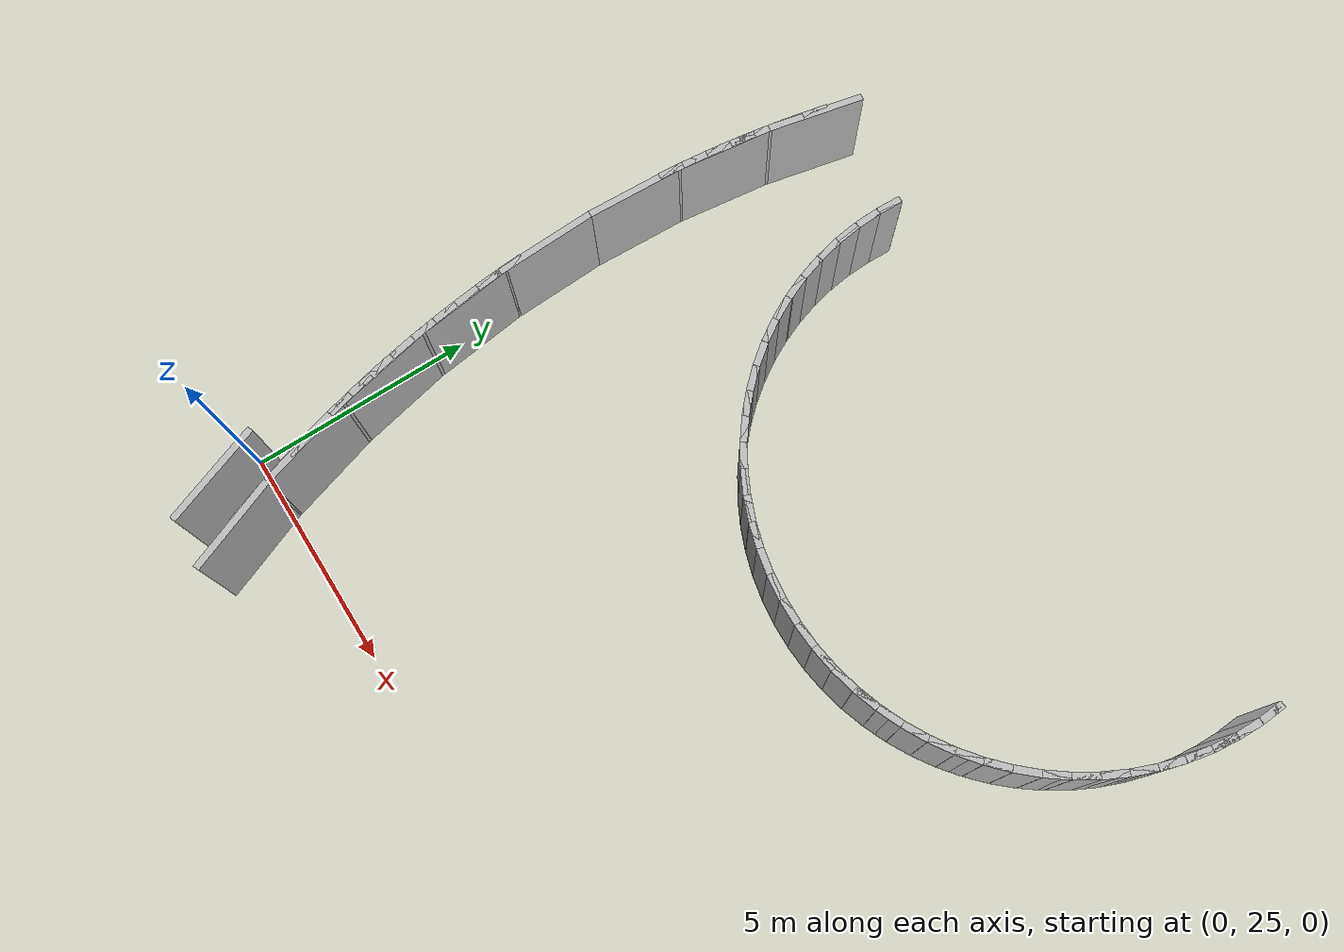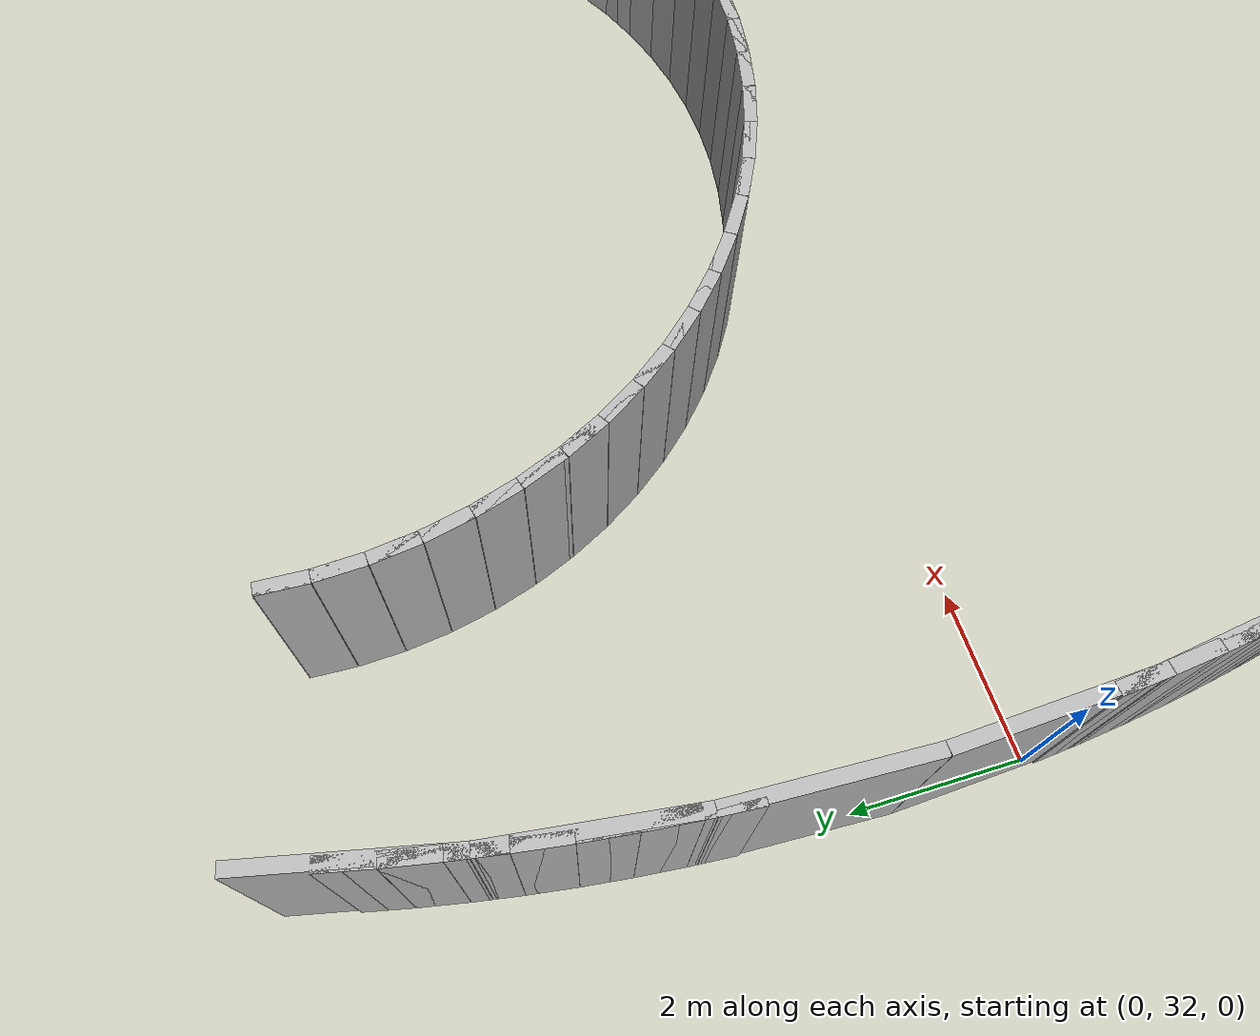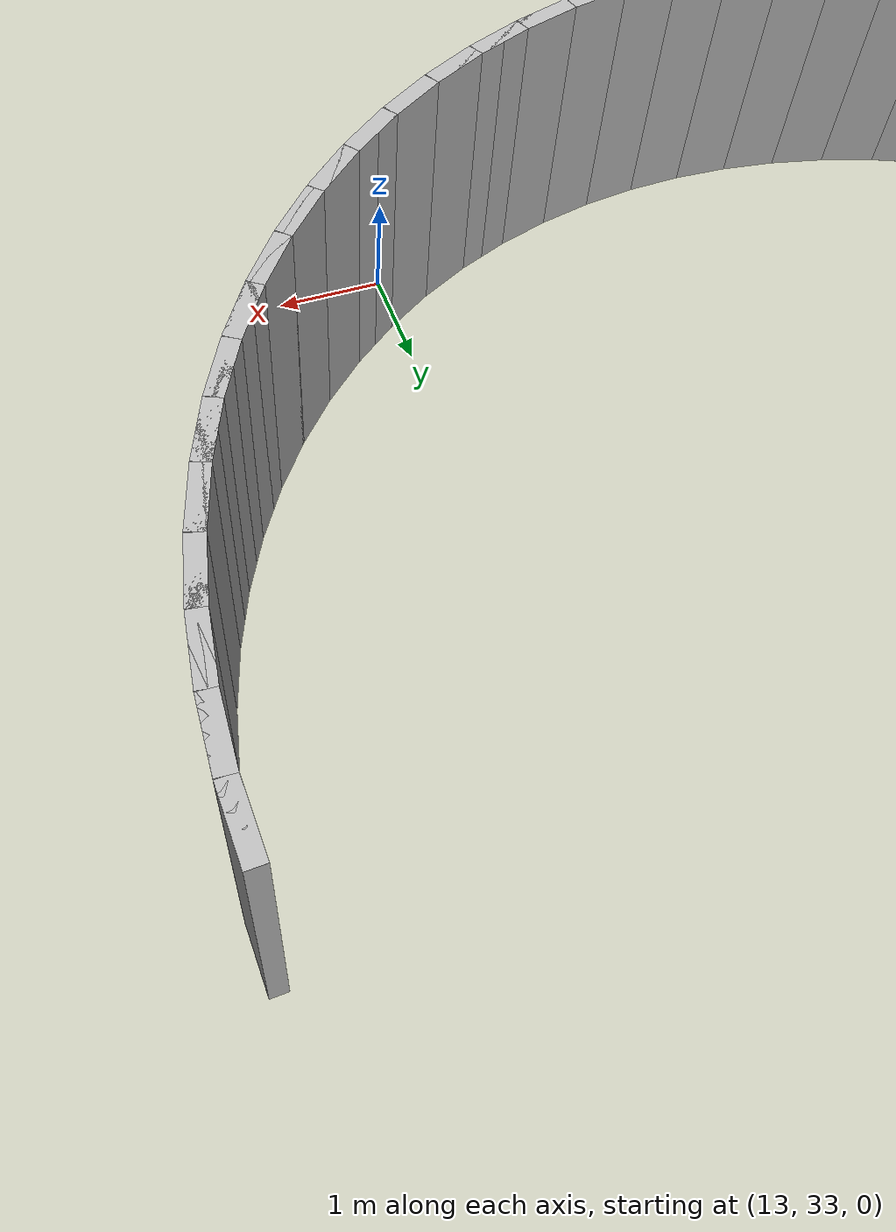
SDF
<sdf version="1.6">
 <model name="sps_2304">
  <static>1</static>
  <allow_auto_disable>0</allow_auto_disable>
  <link name="Wall5310">
   <collision name="collision"><geometry><box><size>0.549538 0.15 2.5</size></box></geometry></collision>
   <visual name="visual">
    <geometry><box><size>0.549538 0.15 2.5</size></box></geometry>
    <transparency>0.0</transparency>
   </visual>
   <pose>15.7837 38.9614 1.25 0 0 -1.52702</pose>
  </link>
  <link name="Wall5311">
   <collision name="collision"><geometry><box><size>0.549546 0.15 2.5</size></box></geometry></collision>
   <visual name="visual">
    <geometry><box><size>0.549546 0.15 2.5</size></box></geometry>
    <transparency>0.0</transparency>
   </visual>
   <pose>15.7836 38.4124 1.25 0 0 -1.6149</pose>
  </link>
  <link name="Wall5312">
   <collision name="collision"><geometry><box><size>0.549713 0.15 2.5</size></box></geometry></collision>
   <visual name="visual">
    <geometry><box><size>0.549713 0.15 2.5</size></box></geometry>
    <transparency>0.0</transparency>
   </visual>
   <pose>15.7355 37.8654 1.25 0 0 -1.70208</pose>
  </link>
  <link name="Wall5313">
   <collision name="collision"><geometry><box><size>0.549661 0.15 2.5</size></box></geometry></collision>
   <visual name="visual">
    <geometry><box><size>0.549661 0.15 2.5</size></box></geometry>
    <transparency>0.0</transparency>
   </visual>
   <pose>15.64 37.3246 1.25 0 0 -1.78906</pose>
  </link>
  <link name="Wall5314">
   <collision name="collision"><geometry><box><size>0.549473 0.15 2.5</size></box></geometry></collision>
   <visual name="visual">
    <geometry><box><size>0.549473 0.15 2.5</size></box></geometry>
    <transparency>0.0</transparency>
   </visual>
   <pose>15.4978 36.7943 1.25 0 0 -1.87656</pose>
  </link>
  <link name="Wall5315">
   <collision name="collision"><geometry><box><size>0.549763 0.15 2.5</size></box></geometry></collision>
   <visual name="visual">
    <geometry><box><size>0.549763 0.15 2.5</size></box></geometry>
    <transparency>0.0</transparency>
   </visual>
   <pose>15.3097 36.2784 1.25 0 0 -1.96398</pose>
  </link>
  <link name="Wall5316">
   <collision name="collision"><geometry><box><size>0.549537 0.15 2.5</size></box></geometry></collision>
   <visual name="visual">
    <geometry><box><size>0.549537 0.15 2.5</size></box></geometry>
    <transparency>0.0</transparency>
   </visual>
   <pose>15.0775 35.7808 1.25 0 0 -2.05084</pose>
  </link>
  <link name="Wall5317">
   <collision name="collision"><geometry><box><size>0.549534 0.15 2.5</size></box></geometry></collision>
   <visual name="visual">
    <geometry><box><size>0.549534 0.15 2.5</size></box></geometry>
    <transparency>0.0</transparency>
   </visual>
   <pose>14.8029 35.3054 1.25 0 0 -2.13834</pose>
  </link>
  <link name="Wall5318">
   <collision name="collision"><geometry><box><size>0.549681 0.15 2.5</size></box></geometry></collision>
   <visual name="visual">
    <geometry><box><size>0.549681 0.15 2.5</size></box></geometry>
    <transparency>0.0</transparency>
   </visual>
   <pose>14.4878 34.8557 1.25 0 0 -2.22565</pose>
  </link>
  <link name="Wall5319">
   <collision name="collision"><geometry><box><size>0.549667 0.15 2.5</size></box></geometry></collision>
   <visual name="visual">
    <geometry><box><size>0.549667 0.15 2.5</size></box></geometry>
    <transparency>0.0</transparency>
   </visual>
   <pose>14.1348 34.4351 1.25 0 0 -2.31268</pose>
  </link>
  <link name="Wall5320">
   <collision name="collision"><geometry><box><size>0.549679 0.15 2.5</size></box></geometry></collision>
   <visual name="visual">
    <geometry><box><size>0.549679 0.15 2.5</size></box></geometry>
    <transparency>0.0</transparency>
   </visual>
   <pose>13.7464 34.0469 1.25 0 0 -2.40018</pose>
  </link>
  <link name="Wall5321">
   <collision name="collision"><geometry><box><size>0.549507 0.15 2.5</size></box></geometry></collision>
   <visual name="visual">
    <geometry><box><size>0.549507 0.15 2.5</size></box></geometry>
    <transparency>0.0</transparency>
   </visual>
   <pose>13.3256 33.6941 1.25 0 0 -2.48734</pose>
  </link>
  <link name="Wall5322">
   <collision name="collision"><geometry><box><size>0.549557 0.15 2.5</size></box></geometry></collision>
   <visual name="visual">
    <geometry><box><size>0.549557 0.15 2.5</size></box></geometry>
    <transparency>0.0</transparency>
   </visual>
   <pose>12.8758 33.3793 1.25 0 0 -2.5746</pose>
  </link>
  <link name="Wall5323">
   <collision name="collision"><geometry><box><size>0.549615 0.15 2.5</size></box></geometry></collision>
   <visual name="visual">
    <geometry><box><size>0.549615 0.15 2.5</size></box></geometry>
    <transparency>0.0</transparency>
   </visual>
   <pose>12.4003 33.1049 1.25 0 0 -2.662</pose>
  </link>
  <link name="Wall5324">
   <collision name="collision"><geometry><box><size>0.5496 0.15 2.5</size></box></geometry></collision>
   <visual name="visual">
    <geometry><box><size>0.5496 0.15 2.5</size></box></geometry>
    <transparency>0.0</transparency>
   </visual>
   <pose>11.9025 32.873 1.25 0 0 -2.74913</pose>
  </link>
  <link name="Wall5325">
   <collision name="collision"><geometry><box><size>0.549826 0.15 2.5</size></box></geometry></collision>
   <visual name="visual">
    <geometry><box><size>0.549826 0.15 2.5</size></box></geometry>
    <transparency>0.0</transparency>
   </visual>
   <pose>11.3864 32.6853 1.25 0 0 -2.83638</pose>
  </link>
  <link name="Wall5326">
   <collision name="collision"><geometry><box><size>0.549509 0.15 2.5</size></box></geometry></collision>
   <visual name="visual">
    <geometry><box><size>0.549509 0.15 2.5</size></box></geometry>
    <transparency>0.0</transparency>
   </visual>
   <pose>10.8559 32.5434 1.25 0 0 -2.92407</pose>
  </link>
  <link name="Wall5327">
   <collision name="collision"><geometry><box><size>0.549484 0.15 2.5</size></box></geometry></collision>
   <visual name="visual">
    <geometry><box><size>0.549484 0.15 2.5</size></box></geometry>
    <transparency>0.0</transparency>
   </visual>
   <pose>10.3153 32.4483 1.25 0 0 -3.01093</pose>
  </link>
  <link name="Wall5328">
   <collision name="collision"><geometry><box><size>0.54971 0.15 2.5</size></box></geometry></collision>
   <visual name="visual">
    <geometry><box><size>0.54971 0.15 2.5</size></box></geometry>
    <transparency>0.0</transparency>
   </visual>
   <pose>9.76827 32.4006 1.25 0 0 -3.09828</pose>
  </link>
  <link name="Wall5329">
   <collision name="collision"><geometry><box><size>0.549535 0.15 2.5</size></box></geometry></collision>
   <visual name="visual">
    <geometry><box><size>0.549535 0.15 2.5</size></box></geometry>
    <transparency>0.0</transparency>
   </visual>
   <pose>9.21917 32.4007 1.25 0 -0 3.09793</pose>
  </link>
  <link name="Wall5330">
   <collision name="collision"><geometry><box><size>0.549721 0.15 2.5</size></box></geometry></collision>
   <visual name="visual">
    <geometry><box><size>0.549721 0.15 2.5</size></box></geometry>
    <transparency>0.0</transparency>
   </visual>
   <pose>8.67217 32.4487 1.25 0 -0 3.0102</pose>
  </link>
  <link name="Wall5331">
   <collision name="collision"><geometry><box><size>0.549483 0.15 2.5</size></box></geometry></collision>
   <visual name="visual">
    <geometry><box><size>0.549483 0.15 2.5</size></box></geometry>
    <transparency>0.0</transparency>
   </visual>
   <pose>8.13146 32.5442 1.25 0 -0 2.92326</pose>
  </link>
  <link name="Wall5332">
   <collision name="collision"><geometry><box><size>0.549648 0.15 2.5</size></box></geometry></collision>
   <visual name="visual">
    <geometry><box><size>0.549648 0.15 2.5</size></box></geometry>
    <transparency>0.0</transparency>
   </visual>
   <pose>7.60116 32.6864 1.25 0 -0 2.83593</pose>
  </link>
  <link name="Wall5333">
   <collision name="collision"><geometry><box><size>0.54974 0.15 2.5</size></box></geometry></collision>
   <visual name="visual">
    <geometry><box><size>0.54974 0.15 2.5</size></box></geometry>
    <transparency>0.0</transparency>
   </visual>
   <pose>7.08517 32.8744 1.25 0 -0 2.74851</pose>
  </link>
  <link name="Wall5334">
   <collision name="collision"><geometry><box><size>0.549537 0.15 2.5</size></box></geometry></collision>
   <visual name="visual">
    <geometry><box><size>0.549537 0.15 2.5</size></box></geometry>
    <transparency>0.0</transparency>
   </visual>
   <pose>6.58755 33.1066 1.25 0 -0 2.66155</pose>
  </link>
  <link name="Wall5335">
   <collision name="collision"><geometry><box><size>0.549632 0.15 2.5</size></box></geometry></collision>
   <visual name="visual">
    <geometry><box><size>0.549632 0.15 2.5</size></box></geometry>
    <transparency>0.0</transparency>
   </visual>
   <pose>6.11214 33.3813 1.25 0 -0 2.57376</pose>
  </link>
  <link name="Wall5336">
   <collision name="collision"><geometry><box><size>0.549607 0.15 2.5</size></box></geometry></collision>
   <visual name="visual">
    <geometry><box><size>0.549607 0.15 2.5</size></box></geometry>
    <transparency>0.0</transparency>
   </visual>
   <pose>5.66247 33.6964 1.25 0 -0 2.48692</pose>
  </link>
  <link name="Wall5337">
   <collision name="collision"><geometry><box><size>0.549532 0.15 2.5</size></box></geometry></collision>
   <visual name="visual">
    <geometry><box><size>0.549532 0.15 2.5</size></box></geometry>
    <transparency>0.0</transparency>
   </visual>
   <pose>5.24197 34.0494 1.25 0 -0 2.39948</pose>
  </link>
  <link name="Wall5338">
   <collision name="collision"><geometry><box><size>0.549679 0.15 2.5</size></box></geometry></collision>
   <visual name="visual">
    <geometry><box><size>0.549679 0.15 2.5</size></box></geometry>
    <transparency>0.0</transparency>
   </visual>
   <pose>4.85384 34.4378 1.25 0 -0 2.31221</pose>
  </link>
  <link name="Wall5339">
   <collision name="collision"><geometry><box><size>0.549715 0.15 2.5</size></box></geometry></collision>
   <visual name="visual">
    <geometry><box><size>0.549715 0.15 2.5</size></box></geometry>
    <transparency>0.0</transparency>
   </visual>
   <pose>4.50094 34.8586 1.25 0 -0 2.22518</pose>
  </link>
  <link name="Wall5340">
   <collision name="collision"><geometry><box><size>0.549608 0.15 2.5</size></box></geometry></collision>
   <visual name="visual">
    <geometry><box><size>0.549608 0.15 2.5</size></box></geometry>
    <transparency>0.0</transparency>
   </visual>
   <pose>4.18606 35.3085 1.25 0 -0 2.13773</pose>
  </link>
  <link name="Wall5341">
   <collision name="collision"><geometry><box><size>0.549399 0.15 2.5</size></box></geometry></collision>
   <visual name="visual">
    <geometry><box><size>0.549399 0.15 2.5</size></box></geometry>
    <transparency>0.0</transparency>
   </visual>
   <pose>3.91167 35.784 1.25 0 -0 2.05059</pose>
  </link>
  <link name="Wall5342">
   <collision name="collision"><geometry><box><size>0.549825 0.15 2.5</size></box></geometry></collision>
   <visual name="visual">
    <geometry><box><size>0.549825 0.15 2.5</size></box></geometry>
    <transparency>0.0</transparency>
   </visual>
   <pose>3.67977 36.2817 1.25 0 -0 1.96309</pose>
  </link>
  <link name="Wall5343">
   <collision name="collision"><geometry><box><size>0.549538 0.15 2.5</size></box></geometry></collision>
   <visual name="visual">
    <geometry><box><size>0.549538 0.15 2.5</size></box></geometry>
    <transparency>0.0</transparency>
   </visual>
   <pose>3.49215 36.7978 1.25 0 -0 1.87583</pose>
  </link>
  <link name="Wall5344">
   <collision name="collision"><geometry><box><size>0.549609 0.15 2.5</size></box></geometry></collision>
   <visual name="visual">
    <geometry><box><size>0.549609 0.15 2.5</size></box></geometry>
    <transparency>0.0</transparency>
   </visual>
   <pose>3.35024 37.3282 1.25 0 -0 1.78862</pose>
  </link>
  <link name="Wall5345">
   <collision name="collision"><geometry><box><size>0.549665 0.15 2.5</size></box></geometry></collision>
   <visual name="visual">
    <geometry><box><size>0.549665 0.15 2.5</size></box></geometry>
    <transparency>0.0</transparency>
   </visual>
   <pose>3.25506 37.869 1.25 0 -0 1.70142</pose>
  </link>
  <link name="Wall5346">
   <collision name="collision"><geometry><box><size>0.549527 0.15 2.5</size></box></geometry></collision>
   <visual name="visual">
    <geometry><box><size>0.549527 0.15 2.5</size></box></geometry>
    <transparency>0.0</transparency>
   </visual>
   <pose>3.20736 38.416 1.25 0 -0 1.61413</pose>
  </link>
  <link name="Wall5347">
   <collision name="collision"><geometry><box><size>0.549535 0.15 2.5</size></box></geometry></collision>
   <visual name="visual">
    <geometry><box><size>0.549535 0.15 2.5</size></box></geometry>
    <transparency>0.0</transparency>
   </visual>
   <pose>3.20745 38.965 1.25 0 -0 1.52713</pose>
  </link>
  <link name="Wall7838">
   <collision name="collision"><geometry><box><size>0.564335 0.15 2.5</size></box></geometry></collision>
   <visual name="visual">
    <geometry><box><size>0.564335 0.15 2.5</size></box></geometry>
    <transparency>0.0</transparency>
   </visual>
   <pose>1.67156 24.4817 1.25 0 -0 1.94329</pose>
  </link>
  <link name="Wall7839">
   <collision name="collision"><geometry><box><size>0.564563 0.15 2.5</size></box></geometry></collision>
   <visual name="visual">
    <geometry><box><size>0.564563 0.15 2.5</size></box></geometry>
    <transparency>0.0</transparency>
   </visual>
   <pose>1.47216 25.0097 1.25 0 -0 1.92048</pose>
  </link>
  <link name="Wall7840">
   <collision name="collision"><geometry><box><size>0.564371 0.15 2.5</size></box></geometry></collision>
   <visual name="visual">
    <geometry><box><size>0.564371 0.15 2.5</size></box></geometry>
    <transparency>0.0</transparency>
   </visual>
   <pose>1.28466 25.5421 1.25 0 -0 1.89836</pose>
  </link>
  <link name="Wall7841">
   <collision name="collision"><geometry><box><size>0.564582 0.15 2.5</size></box></geometry></collision>
   <visual name="visual">
    <geometry><box><size>0.564582 0.15 2.5</size></box></geometry>
    <transparency>0.0</transparency>
   </visual>
   <pose>1.10928 26.0786 1.25 0 -0 1.87515</pose>
  </link>
  <link name="Wall7842">
   <collision name="collision"><geometry><box><size>0.564512 0.15 2.5</size></box></geometry></collision>
   <visual name="visual">
    <geometry><box><size>0.564512 0.15 2.5</size></box></geometry>
    <transparency>0.0</transparency>
   </visual>
   <pose>0.946067 26.619 1.25 0 -0 1.85305</pose>
  </link>
  <link name="Wall7843">
   <collision name="collision"><geometry><box><size>0.564475 0.15 2.5</size></box></geometry></collision>
   <visual name="visual">
    <geometry><box><size>0.564475 0.15 2.5</size></box></geometry>
    <transparency>0.0</transparency>
   </visual>
   <pose>0.795066 27.1629 1.25 0 -0 1.83017</pose>
  </link>
  <link name="Wall7844">
   <collision name="collision"><geometry><box><size>0.564346 0.15 2.5</size></box></geometry></collision>
   <visual name="visual">
    <geometry><box><size>0.564346 0.15 2.5</size></box></geometry>
    <transparency>0.0</transparency>
   </visual>
   <pose>0.656455 27.71 1.25 0 -0 1.8077</pose>
  </link>
  <link name="Wall7845">
   <collision name="collision"><geometry><box><size>0.564536 0.15 2.5</size></box></geometry></collision>
   <visual name="visual">
    <geometry><box><size>0.564536 0.15 2.5</size></box></geometry>
    <transparency>0.0</transparency>
   </visual>
   <pose>0.530235 28.2601 1.25 0 -0 1.78499</pose>
  </link>
  <link name="Wall7846">
   <collision name="collision"><geometry><box><size>0.564549 0.15 2.5</size></box></geometry></collision>
   <visual name="visual">
    <geometry><box><size>0.564549 0.15 2.5</size></box></geometry>
    <transparency>0.0</transparency>
   </visual>
   <pose>0.416435 28.813 1.25 0 -0 1.76257</pose>
  </link>
  <link name="Wall7847">
   <collision name="collision"><geometry><box><size>0.564444 0.15 2.5</size></box></geometry></collision>
   <visual name="visual">
    <geometry><box><size>0.564444 0.15 2.5</size></box></geometry>
    <transparency>0.0</transparency>
   </visual>
   <pose>0.315147 29.3683 1.25 0 -0 1.73986</pose>
  </link>
  <link name="Wall7848">
   <collision name="collision"><geometry><box><size>0.564457 0.15 2.5</size></box></geometry></collision>
   <visual name="visual">
    <geometry><box><size>0.564457 0.15 2.5</size></box></geometry>
    <transparency>0.0</transparency>
   </visual>
   <pose>0.226463 29.9257 1.25 0 -0 1.7173</pose>
  </link>
  <link name="Wall7849">
   <collision name="collision"><geometry><box><size>0.564516 0.15 2.5</size></box></geometry></collision>
   <visual name="visual">
    <geometry><box><size>0.564516 0.15 2.5</size></box></geometry>
    <transparency>0.0</transparency>
   </visual>
   <pose>0.150352 30.485 1.25 0 -0 1.6948</pose>
  </link>
  <link name="Wall7850">
   <collision name="collision"><geometry><box><size>0.564489 0.15 2.5</size></box></geometry></collision>
   <visual name="visual">
    <geometry><box><size>0.564489 0.15 2.5</size></box></geometry>
    <transparency>0.0</transparency>
   </visual>
   <pose>0.0868447 31.0459 1.25 0 -0 1.67228</pose>
  </link>
  <link name="Wall7851">
   <collision name="collision"><geometry><box><size>0.564388 0.15 2.5</size></box></geometry></collision>
   <visual name="visual">
    <geometry><box><size>0.564388 0.15 2.5</size></box></geometry>
    <transparency>0.0</transparency>
   </visual>
   <pose>0.0359414 31.608 1.25 0 -0 1.64993</pose>
  </link>
  <link name="Wall7858">
   <collision name="collision"><geometry><box><size>0.564571 0.15 2.5</size></box></geometry></collision>
   <visual name="visual">
    <geometry><box><size>0.564571 0.15 2.5</size></box></geometry>
    <transparency>0.0</transparency>
   </visual>
   <pose>0.0367349 35.5549 1.25 0 -0 1.49169</pose>
  </link>
  <link name="Wall7859">
   <collision name="collision"><geometry><box><size>0.564332 0.15 2.5</size></box></geometry></collision>
   <visual name="visual">
    <geometry><box><size>0.564332 0.15 2.5</size></box></geometry>
    <transparency>0.0</transparency>
   </visual>
   <pose>0.0877603 36.117 1.25 0 -0 1.46885</pose>
  </link>
  <link name="Wall7860">
   <collision name="collision"><geometry><box><size>0.564508 0.15 2.5</size></box></geometry></collision>
   <visual name="visual">
    <geometry><box><size>0.564508 0.15 2.5</size></box></geometry>
    <transparency>0.0</transparency>
   </visual>
   <pose>0.151359 36.6778 1.25 0 -0 1.4469</pose>
  </link>
  <link name="Wall7861">
   <collision name="collision"><geometry><box><size>0.564493 0.15 2.5</size></box></geometry></collision>
   <visual name="visual">
    <geometry><box><size>0.564493 0.15 2.5</size></box></geometry>
    <transparency>0.0</transparency>
   </visual>
   <pose>0.227561 37.2371 1.25 0 -0 1.42387</pose>
  </link>
  <link name="Wall7862">
   <collision name="collision"><geometry><box><size>0.564474 0.15 2.5</size></box></geometry></collision>
   <visual name="visual">
    <geometry><box><size>0.564474 0.15 2.5</size></box></geometry>
    <transparency>0.0</transparency>
   </visual>
   <pose>0.316459 37.7945 1.25 0 -0 1.40142</pose>
  </link>
  <link name="Wall7863">
   <collision name="collision"><geometry><box><size>0.564416 0.15 2.5</size></box></geometry></collision>
   <visual name="visual">
    <geometry><box><size>0.564416 0.15 2.5</size></box></geometry>
    <transparency>0.0</transparency>
   </visual>
   <pose>0.41796 38.3497 1.25 0 -0 1.37853</pose>
  </link>
  <link name="Wall7864">
   <collision name="collision"><geometry><box><size>0.564515 0.15 2.5</size></box></geometry></collision>
   <visual name="visual">
    <geometry><box><size>0.564515 0.15 2.5</size></box></geometry>
    <transparency>0.0</transparency>
   </visual>
   <pose>0.531974 38.9025 1.25 0 -0 1.35627</pose>
  </link>
  <link name="Wall19320">
   <collision name="collision"><geometry><box><size>0.549534 0.15 2.5</size></box></geometry></collision>
   <visual name="visual">
    <geometry><box><size>0.549534 0.15 2.5</size></box></geometry>
    <transparency>0.0</transparency>
   </visual>
   <pose>14.8029 35.3054 1.25 0 -0 1.00325</pose>
  </link>
  <link name="Wall19321">
   <collision name="collision"><geometry><box><size>0.549537 0.15 2.5</size></box></geometry></collision>
   <visual name="visual">
    <geometry><box><size>0.549537 0.15 2.5</size></box></geometry>
    <transparency>0.0</transparency>
   </visual>
   <pose>15.0775 35.7808 1.25 0 -0 1.09076</pose>
  </link>
  <link name="Wall19322">
   <collision name="collision"><geometry><box><size>0.549693 0.15 2.5</size></box></geometry></collision>
   <visual name="visual">
    <geometry><box><size>0.549693 0.15 2.5</size></box></geometry>
    <transparency>0.0</transparency>
   </visual>
   <pose>15.3097 36.2784 1.25 0 -0 1.17792</pose>
  </link>
  <link name="Wall19323">
   <collision name="collision"><geometry><box><size>0.549703 0.15 2.5</size></box></geometry></collision>
   <visual name="visual">
    <geometry><box><size>0.549703 0.15 2.5</size></box></geometry>
    <transparency>0.0</transparency>
   </visual>
   <pose>15.4977 36.7944 1.25 0 -0 1.26481</pose>
  </link>
  <link name="Wall19324">
   <collision name="collision"><geometry><box><size>0.549483 0.15 2.5</size></box></geometry></collision>
   <visual name="visual">
    <geometry><box><size>0.549483 0.15 2.5</size></box></geometry>
    <transparency>0.0</transparency>
   </visual>
   <pose>15.64 37.3247 1.25 0 -0 1.35246</pose>
  </link>
  <link name="Wall19325">
   <collision name="collision"><geometry><box><size>0.549713 0.15 2.5</size></box></geometry></collision>
   <visual name="visual">
    <geometry><box><size>0.549713 0.15 2.5</size></box></geometry>
    <transparency>0.0</transparency>
   </visual>
   <pose>15.7355 37.8654 1.25 0 -0 1.43951</pose>
  </link>
  <link name="Wall19326">
   <collision name="collision"><geometry><box><size>0.549535 0.15 2.5</size></box></geometry></collision>
   <visual name="visual">
    <geometry><box><size>0.549535 0.15 2.5</size></box></geometry>
    <transparency>0.0</transparency>
   </visual>
   <pose>15.7834 38.4124 1.25 0 -0 1.52713</pose>
  </link>
  <link name="Wall19327">
   <collision name="collision"><geometry><box><size>0.54971 0.15 2.5</size></box></geometry></collision>
   <visual name="visual">
    <geometry><box><size>0.54971 0.15 2.5</size></box></geometry>
    <transparency>0.0</transparency>
   </visual>
   <pose>15.7835 38.9615 1.25 0 -0 1.61411</pose>
  </link>
  <link name="Wall19362">
   <collision name="collision"><geometry><box><size>0.549726 0.15 2.5</size></box></geometry></collision>
   <visual name="visual">
    <geometry><box><size>0.549726 0.15 2.5</size></box></geometry>
    <transparency>0.0</transparency>
   </visual>
   <pose>3.20736 38.9649 1.25 0 0 -1.61478</pose>
  </link>
  <link name="Wall19363">
   <collision name="collision"><geometry><box><size>0.549527 0.15 2.5</size></box></geometry></collision>
   <visual name="visual">
    <geometry><box><size>0.549527 0.15 2.5</size></box></geometry>
    <transparency>0.0</transparency>
   </visual>
   <pose>3.20718 38.4158 1.25 0 0 -1.52747</pose>
  </link>
  <link name="Wall19364">
   <collision name="collision"><geometry><box><size>0.549726 0.15 2.5</size></box></geometry></collision>
   <visual name="visual">
    <geometry><box><size>0.549726 0.15 2.5</size></box></geometry>
    <transparency>0.0</transparency>
   </visual>
   <pose>3.25487 37.8688 1.25 0 0 -1.44019</pose>
  </link>
  <link name="Wall19365">
   <collision name="collision"><geometry><box><size>0.549549 0.15 2.5</size></box></geometry></collision>
   <visual name="visual">
    <geometry><box><size>0.549549 0.15 2.5</size></box></geometry>
    <transparency>0.0</transparency>
   </visual>
   <pose>3.35006 37.328 1.25 0 0 -1.35295</pose>
  </link>
  <link name="Wall19366">
   <collision name="collision"><geometry><box><size>0.549651 0.15 2.5</size></box></geometry></collision>
   <visual name="visual">
    <geometry><box><size>0.549651 0.15 2.5</size></box></geometry>
    <transparency>0.0</transparency>
   </visual>
   <pose>3.49206 36.7976 1.25 0 0 -1.26548</pose>
  </link>
  <link name="Wall19367">
   <collision name="collision"><geometry><box><size>0.5496 0.15 2.5</size></box></geometry></collision>
   <visual name="visual">
    <geometry><box><size>0.5496 0.15 2.5</size></box></geometry>
    <transparency>0.0</transparency>
   </visual>
   <pose>3.67977 36.2816 1.25 0 0 -1.17833</pose>
  </link>
  <link name="Wall19368">
   <collision name="collision"><geometry><box><size>0.549561 0.15 2.5</size></box></geometry></collision>
   <visual name="visual">
    <geometry><box><size>0.549561 0.15 2.5</size></box></geometry>
    <transparency>0.0</transparency>
   </visual>
   <pose>3.91167 35.7839 1.25 0 0 -1.09115</pose>
  </link>
  <link name="Wall19369">
   <collision name="collision"><geometry><box><size>0.549608 0.15 2.5</size></box></geometry></collision>
   <visual name="visual">
    <geometry><box><size>0.549608 0.15 2.5</size></box></geometry>
    <transparency>0.0</transparency>
   </visual>
   <pose>4.18606 35.3083 1.25 0 0 -1.00386</pose>
  </link>
  <link name="Wall19370">
   <collision name="collision"><geometry><box><size>0.549652 0.15 2.5</size></box></geometry></collision>
   <visual name="visual">
    <geometry><box><size>0.549652 0.15 2.5</size></box></geometry>
    <transparency>0.0</transparency>
   </visual>
   <pose>4.50085 34.8584 1.25 0 0 -0.916746</pose>
  </link>
  <link name="Wall19371">
   <collision name="collision"><geometry><box><size>0.549499 0.15 2.5</size></box></geometry></collision>
   <visual name="visual">
    <geometry><box><size>0.549499 0.15 2.5</size></box></geometry>
    <transparency>0.0</transparency>
   </visual>
   <pose>4.85366 34.4377 1.25 0 0 -0.829081</pose>
  </link>
  <link name="Wall19372">
   <collision name="collision"><geometry><box><size>0.549832 0.15 2.5</size></box></geometry></collision>
   <visual name="visual">
    <geometry><box><size>0.549832 0.15 2.5</size></box></geometry>
    <transparency>0.0</transparency>
   </visual>
   <pose>5.24187 34.0493 1.25 0 0 -0.742213</pose>
  </link>
  <link name="Wall19373">
   <collision name="collision"><geometry><box><size>0.549425 0.15 2.5</size></box></geometry></collision>
   <visual name="visual">
    <geometry><box><size>0.549425 0.15 2.5</size></box></geometry>
    <transparency>0.0</transparency>
   </visual>
   <pose>5.66238 33.6962 1.25 0 0 -0.654788</pose>
  </link>
  <link name="Wall19374">
   <collision name="collision"><geometry><box><size>0.549688 0.15 2.5</size></box></geometry></collision>
   <visual name="visual">
    <geometry><box><size>0.549688 0.15 2.5</size></box></geometry>
    <transparency>0.0</transparency>
   </visual>
   <pose>6.11205 33.3812 1.25 0 0 -0.567368</pose>
  </link>
  <link name="Wall19375">
   <collision name="collision"><geometry><box><size>0.549622 0.15 2.5</size></box></geometry></collision>
   <visual name="visual">
    <geometry><box><size>0.549622 0.15 2.5</size></box></geometry>
    <transparency>0.0</transparency>
   </visual>
   <pose>6.58755 33.1065 1.25 0 0 -0.480335</pose>
  </link>
  <link name="Wall19376">
   <collision name="collision"><geometry><box><size>0.54967 0.15 2.5</size></box></geometry></collision>
   <visual name="visual">
    <geometry><box><size>0.54967 0.15 2.5</size></box></geometry>
    <transparency>0.0</transparency>
   </visual>
   <pose>7.08517 32.8743 1.25 0 0 -0.392775</pose>
  </link>
  <link name="Wall19377">
   <collision name="collision"><geometry><box><size>0.549473 0.15 2.5</size></box></geometry></collision>
   <visual name="visual">
    <geometry><box><size>0.549473 0.15 2.5</size></box></geometry>
    <transparency>0.0</transparency>
   </visual>
   <pose>7.60107 32.6864 1.25 0 0 -0.305767</pose>
  </link>
  <link name="Wall19378">
   <collision name="collision"><geometry><box><size>0.549701 0.15 2.5</size></box></geometry></collision>
   <visual name="visual">
    <geometry><box><size>0.549701 0.15 2.5</size></box></geometry>
    <transparency>0.0</transparency>
   </visual>
   <pose>8.13137 32.5441 1.25 0 0 -0.218585</pose>
  </link>
  <link name="Wall19379">
   <collision name="collision"><geometry><box><size>0.549516 0.15 2.5</size></box></geometry></collision>
   <visual name="visual">
    <geometry><box><size>0.549516 0.15 2.5</size></box></geometry>
    <transparency>0.0</transparency>
   </visual>
   <pose>8.67208 32.4486 1.25 0 0 -0.131106</pose>
  </link>
  <link name="Wall19380">
   <collision name="collision"><geometry><box><size>0.549726 0.15 2.5</size></box></geometry></collision>
   <visual name="visual">
    <geometry><box><size>0.549726 0.15 2.5</size></box></geometry>
    <transparency>0.0</transparency>
   </visual>
   <pose>9.21908 32.4006 1.25 0 0 -0.0439814</pose>
  </link>
  <link name="Wall19381">
   <collision name="collision"><geometry><box><size>0.549527 0.15 2.5</size></box></geometry></collision>
   <visual name="visual">
    <geometry><box><size>0.549527 0.15 2.5</size></box></geometry>
    <transparency>0.0</transparency>
   </visual>
   <pose>9.76818 32.4004 1.25 0 -0 0.0433303</pose>
  </link>
  <link name="Wall19382">
   <collision name="collision"><geometry><box><size>0.549665 0.15 2.5</size></box></geometry></collision>
   <visual name="visual">
    <geometry><box><size>0.549665 0.15 2.5</size></box></geometry>
    <transparency>0.0</transparency>
   </visual>
   <pose>10.3152 32.4481 1.25 0 -0 0.130622</pose>
  </link>
  <link name="Wall19383">
   <collision name="collision"><geometry><box><size>0.549549 0.15 2.5</size></box></geometry></collision>
   <visual name="visual">
    <geometry><box><size>0.549549 0.15 2.5</size></box></geometry>
    <transparency>0.0</transparency>
   </visual>
   <pose>10.8559 32.5433 1.25 0 -0 0.21785</pose>
  </link>
  <link name="Wall19384">
   <collision name="collision"><geometry><box><size>0.549651 0.15 2.5</size></box></geometry></collision>
   <visual name="visual">
    <geometry><box><size>0.549651 0.15 2.5</size></box></geometry>
    <transparency>0.0</transparency>
   </visual>
   <pose>11.3863 32.6853 1.25 0 -0 0.305316</pose>
  </link>
  <link name="Wall19385">
   <collision name="collision"><geometry><box><size>0.549769 0.15 2.5</size></box></geometry></collision>
   <visual name="visual">
    <geometry><box><size>0.549769 0.15 2.5</size></box></geometry>
    <transparency>0.0</transparency>
   </visual>
   <pose>11.9025 32.873 1.25 0 -0 0.39234</pose>
  </link>
  <link name="Wall19386">
   <collision name="collision"><geometry><box><size>0.549453 0.15 2.5</size></box></geometry></collision>
   <visual name="visual">
    <geometry><box><size>0.549453 0.15 2.5</size></box></geometry>
    <transparency>0.0</transparency>
   </visual>
   <pose>12.4002 33.1049 1.25 0 -0 0.479744</pose>
  </link>
  <link name="Wall19387">
   <collision name="collision"><geometry><box><size>0.549557 0.15 2.5</size></box></geometry></collision>
   <visual name="visual">
    <geometry><box><size>0.549557 0.15 2.5</size></box></geometry>
    <transparency>0.0</transparency>
   </visual>
   <pose>12.8757 33.3793 1.25 0 -0 0.566993</pose>
  </link>
  <link name="Wall19388">
   <collision name="collision"><geometry><box><size>0.549652 0.15 2.5</size></box></geometry></collision>
   <visual name="visual">
    <geometry><box><size>0.549652 0.15 2.5</size></box></geometry>
    <transparency>0.0</transparency>
   </visual>
   <pose>13.3256 33.6941 1.25 0 -0 0.65405</pose>
  </link>
  <link name="Wall19389">
   <collision name="collision"><geometry><box><size>0.549802 0.15 2.5</size></box></geometry></collision>
   <visual name="visual">
    <geometry><box><size>0.549802 0.15 2.5</size></box></geometry>
    <transparency>0.0</transparency>
   </visual>
   <pose>13.7464 34.047 1.25 0 -0 0.741661</pose>
  </link>
  <link name="Wall19390">
   <collision name="collision"><geometry><box><size>0.549532 0.15 2.5</size></box></geometry></collision>
   <visual name="visual">
    <geometry><box><size>0.549532 0.15 2.5</size></box></geometry>
    <transparency>0.0</transparency>
   </visual>
   <pose>14.1348 34.4352 1.25 0 -0 0.828685</pose>
  </link>
  <link name="Wall19391">
   <collision name="collision"><geometry><box><size>0.549681 0.15 2.5</size></box></geometry></collision>
   <visual name="visual">
    <geometry><box><size>0.549681 0.15 2.5</size></box></geometry>
    <transparency>0.0</transparency>
   </visual>
   <pose>14.4878 34.8557 1.25 0 -0 0.915947</pose>
  </link>
  <link name="Wall23954">
   <collision name="collision"><geometry><box><size>2.14443 0.15 2.5</size></box></geometry></collision>
   <visual name="visual">
    <geometry><box><size>2.14443 0.15 2.5</size></box></geometry>
    <transparency>0.0</transparency>
   </visual>
   <pose>0.552879 38.8979 1.25 0 0 -1.78545</pose>
  </link>
  <link name="Wall23955">
   <collision name="collision"><geometry><box><size>2.14438 0.15 2.5</size></box></geometry></collision>
   <visual name="visual">
    <geometry><box><size>2.14438 0.15 2.5</size></box></geometry>
    <transparency>0.0</transparency>
   </visual>
   <pose>0.186668 36.787 1.25 0 0 -1.69969</pose>
  </link>
  <link name="Wall23956">
   <collision name="collision"><geometry><box><size>2.14439 0.15 2.5</size></box></geometry></collision>
   <visual name="visual">
    <geometry><box><size>2.14439 0.15 2.5</size></box></geometry>
    <transparency>0.0</transparency>
   </visual>
   <pose>0.00264673 34.6525 1.25 0 0 -1.6139</pose>
  </link>
  <link name="Wall23957">
   <collision name="collision"><geometry><box><size>2.14436 0.15 2.5</size></box></geometry></collision>
   <visual name="visual">
    <geometry><box><size>2.14436 0.15 2.5</size></box></geometry>
    <transparency>0.0</transparency>
   </visual>
   <pose>0.00234155 32.5101 1.25 0 0 -1.52797</pose>
  </link>
  <link name="Wall23958">
   <collision name="collision"><geometry><box><size>2.14433 0.15 2.5</size></box></geometry></collision>
   <visual name="visual">
    <geometry><box><size>2.14433 0.15 2.5</size></box></geometry>
    <transparency>0.0</transparency>
   </visual>
   <pose>0.185661 30.3756 1.25 0 0 -1.44227</pose>
  </link>
  <link name="Wall23959">
   <collision name="collision"><geometry><box><size>2.1442 0.15 2.5</size></box></geometry></collision>
   <visual name="visual">
    <geometry><box><size>2.1442 0.15 2.5</size></box></geometry>
    <transparency>0.0</transparency>
   </visual>
   <pose>0.551078 28.2647 1.25 0 0 -1.3565</pose>
  </link>
  <link name="Wall23960">
   <collision name="collision"><geometry><box><size>2.1445 0.15 2.5</size></box></geometry></collision>
   <visual name="visual">
    <geometry><box><size>2.1445 0.15 2.5</size></box></geometry>
    <transparency>0.0</transparency>
   </visual>
   <pose>1.09606 26.1928 1.25 0 0 -1.27068</pose>
  </link>
  <link name="Wall23961">
   <collision name="collision"><geometry><box><size>2.1443 0.15 2.5</size></box></geometry></collision>
   <visual name="visual">
    <geometry><box><size>2.1443 0.15 2.5</size></box></geometry>
    <transparency>0.0</transparency>
   </visual>
   <pose>1.81664 24.1752 1.25 0 0 -1.18485</pose>
  </link>
  <link name="Wall28964">
   <collision name="collision"><geometry><box><size>0.564515 0.15 2.5</size></box></geometry></collision>
   <visual name="visual">
    <geometry><box><size>0.564515 0.15 2.5</size></box></geometry>
    <transparency>0.0</transparency>
   </visual>
   <pose>0.531974 38.9025 1.25 0 0 -1.78533</pose>
  </link>
  <link name="Wall28965">
   <collision name="collision"><geometry><box><size>0.564416 0.15 2.5</size></box></geometry></collision>
   <visual name="visual">
    <geometry><box><size>0.564416 0.15 2.5</size></box></geometry>
    <transparency>0.0</transparency>
   </visual>
   <pose>0.41796 38.3497 1.25 0 0 -1.76306</pose>
  </link>
  <link name="Wall28966">
   <collision name="collision"><geometry><box><size>0.564474 0.15 2.5</size></box></geometry></collision>
   <visual name="visual">
    <geometry><box><size>0.564474 0.15 2.5</size></box></geometry>
    <transparency>0.0</transparency>
   </visual>
   <pose>0.316459 37.7945 1.25 0 0 -1.74018</pose>
  </link>
  <link name="Wall28967">
   <collision name="collision"><geometry><box><size>0.564493 0.15 2.5</size></box></geometry></collision>
   <visual name="visual">
    <geometry><box><size>0.564493 0.15 2.5</size></box></geometry>
    <transparency>0.0</transparency>
   </visual>
   <pose>0.227561 37.2371 1.25 0 0 -1.71772</pose>
  </link>
  <link name="Wall28968">
   <collision name="collision"><geometry><box><size>0.564508 0.15 2.5</size></box></geometry></collision>
   <visual name="visual">
    <geometry><box><size>0.564508 0.15 2.5</size></box></geometry>
    <transparency>0.0</transparency>
   </visual>
   <pose>0.151359 36.6778 1.25 0 0 -1.6947</pose>
  </link>
  <link name="Wall28969">
   <collision name="collision"><geometry><box><size>0.564332 0.15 2.5</size></box></geometry></collision>
   <visual name="visual">
    <geometry><box><size>0.564332 0.15 2.5</size></box></geometry>
    <transparency>0.0</transparency>
   </visual>
   <pose>0.0877603 36.117 1.25 0 0 -1.67275</pose>
  </link>
  <link name="Wall28970">
   <collision name="collision"><geometry><box><size>0.564571 0.15 2.5</size></box></geometry></collision>
   <visual name="visual">
    <geometry><box><size>0.564571 0.15 2.5</size></box></geometry>
    <transparency>0.0</transparency>
   </visual>
   <pose>0.0367349 35.5549 1.25 0 0 -1.64991</pose>
  </link>
  <link name="Wall28977">
   <collision name="collision"><geometry><box><size>0.564388 0.15 2.5</size></box></geometry></collision>
   <visual name="visual">
    <geometry><box><size>0.564388 0.15 2.5</size></box></geometry>
    <transparency>0.0</transparency>
   </visual>
   <pose>0.0359414 31.608 1.25 0 0 -1.49166</pose>
  </link>
  <link name="Wall28978">
   <collision name="collision"><geometry><box><size>0.564489 0.15 2.5</size></box></geometry></collision>
   <visual name="visual">
    <geometry><box><size>0.564489 0.15 2.5</size></box></geometry>
    <transparency>0.0</transparency>
   </visual>
   <pose>0.0868447 31.0459 1.25 0 0 -1.46931</pose>
  </link>
  <link name="Wall28979">
   <collision name="collision"><geometry><box><size>0.564516 0.15 2.5</size></box></geometry></collision>
   <visual name="visual">
    <geometry><box><size>0.564516 0.15 2.5</size></box></geometry>
    <transparency>0.0</transparency>
   </visual>
   <pose>0.150352 30.485 1.25 0 0 -1.44679</pose>
  </link>
  <link name="Wall28980">
   <collision name="collision"><geometry><box><size>0.564457 0.15 2.5</size></box></geometry></collision>
   <visual name="visual">
    <geometry><box><size>0.564457 0.15 2.5</size></box></geometry>
    <transparency>0.0</transparency>
   </visual>
   <pose>0.226463 29.9257 1.25 0 0 -1.4243</pose>
  </link>
  <link name="Wall28981">
   <collision name="collision"><geometry><box><size>0.564444 0.15 2.5</size></box></geometry></collision>
   <visual name="visual">
    <geometry><box><size>0.564444 0.15 2.5</size></box></geometry>
    <transparency>0.0</transparency>
   </visual>
   <pose>0.315147 29.3683 1.25 0 0 -1.40174</pose>
  </link>
  <link name="Wall28982">
   <collision name="collision"><geometry><box><size>0.564549 0.15 2.5</size></box></geometry></collision>
   <visual name="visual">
    <geometry><box><size>0.564549 0.15 2.5</size></box></geometry>
    <transparency>0.0</transparency>
   </visual>
   <pose>0.416435 28.813 1.25 0 0 -1.37902</pose>
  </link>
  <link name="Wall28983">
   <collision name="collision"><geometry><box><size>0.564536 0.15 2.5</size></box></geometry></collision>
   <visual name="visual">
    <geometry><box><size>0.564536 0.15 2.5</size></box></geometry>
    <transparency>0.0</transparency>
   </visual>
   <pose>0.530235 28.2601 1.25 0 0 -1.35661</pose>
  </link>
  <link name="Wall28984">
   <collision name="collision"><geometry><box><size>0.564346 0.15 2.5</size></box></geometry></collision>
   <visual name="visual">
    <geometry><box><size>0.564346 0.15 2.5</size></box></geometry>
    <transparency>0.0</transparency>
   </visual>
   <pose>0.656455 27.71 1.25 0 0 -1.3339</pose>
  </link>
  <link name="Wall28985">
   <collision name="collision"><geometry><box><size>0.564475 0.15 2.5</size></box></geometry></collision>
   <visual name="visual">
    <geometry><box><size>0.564475 0.15 2.5</size></box></geometry>
    <transparency>0.0</transparency>
   </visual>
   <pose>0.795066 27.1629 1.25 0 0 -1.31142</pose>
  </link>
  <link name="Wall28986">
   <collision name="collision"><geometry><box><size>0.564512 0.15 2.5</size></box></geometry></collision>
   <visual name="visual">
    <geometry><box><size>0.564512 0.15 2.5</size></box></geometry>
    <transparency>0.0</transparency>
   </visual>
   <pose>0.946067 26.619 1.25 0 0 -1.28855</pose>
  </link>
  <link name="Wall28987">
   <collision name="collision"><geometry><box><size>0.564582 0.15 2.5</size></box></geometry></collision>
   <visual name="visual">
    <geometry><box><size>0.564582 0.15 2.5</size></box></geometry>
    <transparency>0.0</transparency>
   </visual>
   <pose>1.10928 26.0786 1.25 0 0 -1.26645</pose>
  </link>
  <link name="Wall28988">
   <collision name="collision"><geometry><box><size>0.564371 0.15 2.5</size></box></geometry></collision>
   <visual name="visual">
    <geometry><box><size>0.564371 0.15 2.5</size></box></geometry>
    <transparency>0.0</transparency>
   </visual>
   <pose>1.28466 25.5421 1.25 0 0 -1.24323</pose>
  </link>
  <link name="Wall28989">
   <collision name="collision"><geometry><box><size>0.564563 0.15 2.5</size></box></geometry></collision>
   <visual name="visual">
    <geometry><box><size>0.564563 0.15 2.5</size></box></geometry>
    <transparency>0.0</transparency>
   </visual>
   <pose>1.47216 25.0097 1.25 0 0 -1.22111</pose>
  </link>
  <link name="Wall28990">
   <collision name="collision"><geometry><box><size>0.564335 0.15 2.5</size></box></geometry></collision>
   <visual name="visual">
    <geometry><box><size>0.564335 0.15 2.5</size></box></geometry>
    <transparency>0.0</transparency>
   </visual>
   <pose>1.67156 24.4817 1.25 0 0 -1.1983</pose>
  </link>
  <link name="Wall36651">
   <collision name="collision"><geometry><box><size>2.31526 0.15 2.5</size></box></geometry></collision>
   <visual name="visual">
    <geometry><box><size>2.31526 0.15 2.5</size></box></geometry>
    <transparency>0.0</transparency>
   </visual>
   <pose>0.687278 24.3217 1.25 0 0 -1.20637</pose>
  </link>
 </model>
</sdf>
